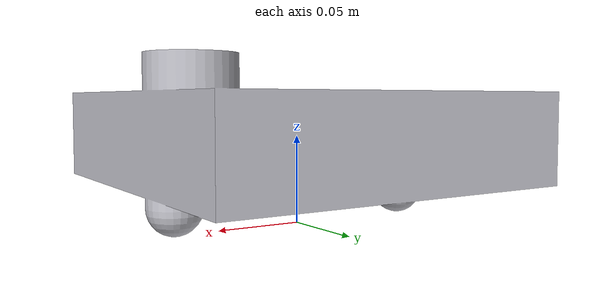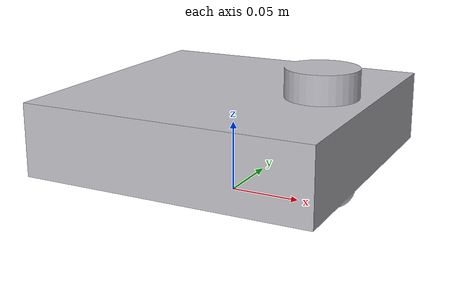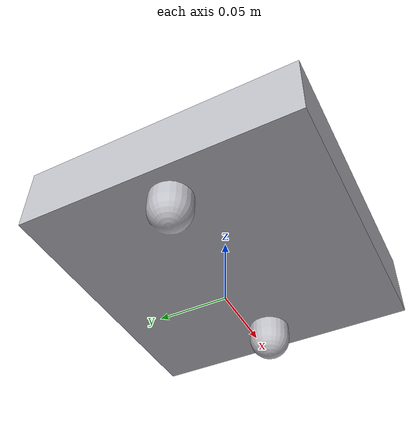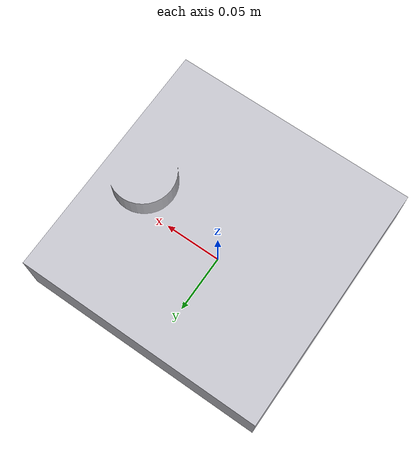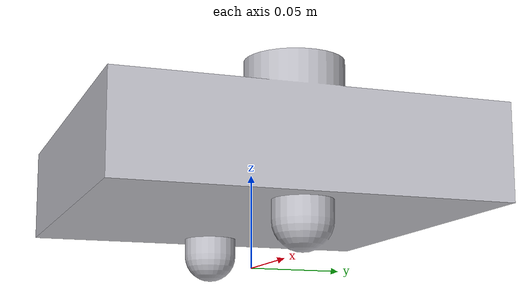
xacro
<?xml version="1.0" ?>
<robot name="diff_bot" xmlns:xacro="http://www.ros.org/wiki/xacro">

<xacro:include filename="$(find diff_bot_description)/urdf/materials.xacro" />
<xacro:include filename="$(find diff_bot_description)/urdf/diff_bot.trans" />
<xacro:include filename="$(find diff_bot_description)/urdf/diff_bot.gazebo" />
<link name="base_link">
  <inertial>
    <origin xyz="0.001236479549238988 1.7595715933608262e-17 0.05018173541387255" rpy="0 0 0"/>
    <mass value="16.23016292342114"/>
    <inertia ixx="0.056336" iyy="0.058867" izz="0.107316" ixy="0.0" iyz="0.0" ixz="-0.000699"/>
  </inertial>
  <visual>
    <origin xyz="0 0 0" rpy="0 0 0"/>
    <geometry>
      <mesh filename="package://diff_bot_description/meshes/base_link.stl" scale="0.001 0.001 0.001"/>
    </geometry>
    <material name="silver"/>
  </visual>
  <collision>
    <origin xyz="0 0 0" rpy="0 0 0"/>
    <geometry>
      <mesh filename="package://diff_bot_description/meshes/base_link.stl" scale="0.001 0.001 0.001"/>
    </geometry>
  </collision>
</link>

</robot>

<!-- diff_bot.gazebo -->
<robot name="diff_bot" xmlns:xacro="http://www.ros.org/wiki/xacro" >

<xacro:property name="body_color" value="Gazebo/Silver" />

<gazebo>
  <plugin name="control" filename="libgazebo_ros_control.so"/>
</gazebo>
<gazebo reference="base_link">
  <material>${body_color}</material>
  <mu1>0.2</mu1>
  <mu2>0.2</mu2>
  <selfCollide>true</selfCollide>
  <gravity>true</gravity>
</gazebo>

</robot>
